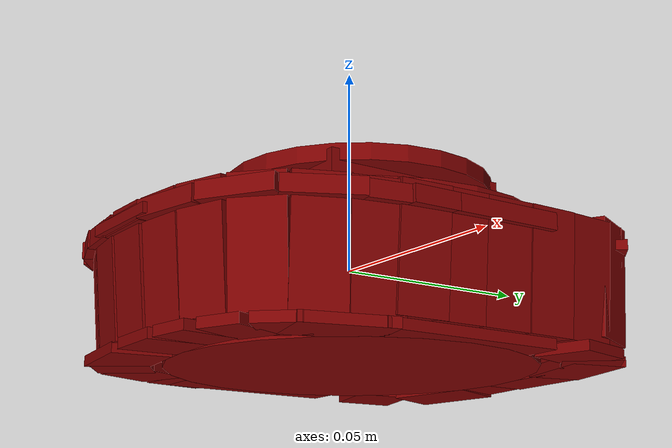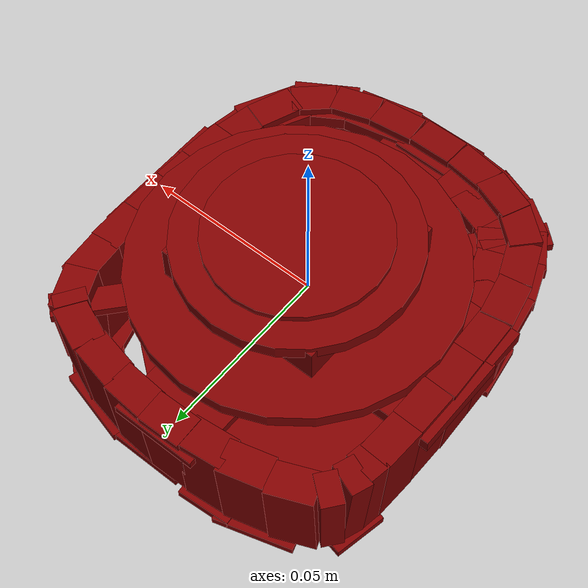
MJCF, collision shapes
<?xml version='1.0' encoding='UTF-8'?>
<mujoco model="model">
  <option timestep="0.002" gravity="0.0 0.0 -9.81"/>
  <compiler angle="radian"/>
  <asset>
    <mesh file="visuals/lid.obj" name="lid_vis"/>
    <texture file="visuals/T_BC001.png" name="lid_material" type="2d"/>
    <material name="lid_material" rgba="1 1 1 1.0" texture="lid_material" shininess="0.4472135901451111" specular="0.3103448502657381"/>
  </asset>
  <default>
    <default class="visual">
      <geom conaffinity="0" contype="0" group="1" type="mesh"/>
    </default>
    <default class="collision">
      <geom group="0" rgba="0.5 0 0 0.5" solref="0.004 1" solimp="0.998 0.998 0.001"/>
    </default>
    <default class="spawn">
      <geom group="0" rgba="1 1 1 0.5" contype="0" conaffinity="0"/>
      <site group="0" rgba="1 1 1 0.5"/>
    </default>
    <default class="region">
      <geom group="1" conaffinity="0" contype="0" rgba="0 1 0 0" mass="0"/>
    </default>
  </default>
  <worldbody>
    <body>
      <body name="object">
        <geom mesh="lid_vis" type="mesh" solimp="0.998 0.998 0.001" solref="0.001 1" friction="0.95 0.3 0.1" class="visual" material="lid_material"/>
        <geom type="box" pos="-0.0008717566379345953 -0.052492860704660416 -0.006645962595939636" size="0.006184625905007124 0.0043828533962368965 0.014015174470841885" quat="0.9989956021308899 0.04480874165892601 0.0 0.0" class="collision"/>
        <geom type="box" pos="0.002456957008689642 0.0010343752801418304 0.01422727108001709" size="0.02343365177512169 0.02343365177512169 0.005553874187171459" quat="1.0 0.0 0.0 0.0" class="collision"/>
        <geom type="box" pos="0.0003340260009281337 -0.0010789477964863181 0.0032468149438500404" size="0.011943714693188667 0.059019118547439575 0.001211795606650412" quat="1.0 0.0 0.0 0.0" class="collision"/>
        <geom type="box" pos="-0.00023086309374775738 0.005385901778936386 0.003638729453086853" size="0.051560331135988235 0.013726476579904556 0.001966416137292981" quat="1.0 0.0 0.0 0.0" class="collision"/>
        <geom type="cylinder" name="handle_main" pos="0.002456957008689642 0.0010343752801418304 0.01907290518283844" size="0.031915199011564255 0.001953316852450371" quat="1.0 0.0 0.0 0.0" class="collision"/>
        <geom type="cylinder" pos="0.002456957008689642 0.0010343752801418304 0.0209781676530838" size="0.02421092987060547 0.0017286426154896617" quat="1.0 0.0 0.0 0.0" class="collision"/>
        <geom type="box" pos="0.011734290979802608 -0.0514787994325161 -0.006628669332712889" size="0.006184625905007124 0.0043828533962368965 0.014015174470841885" quat="0.9971495866775513 0.04472595453262329 0.0027227734681218863 0.06070328503847122" class="collision"/>
        <geom type="box" pos="0.0235845148563385 -0.04909174144268036 -0.006677878089249134" size="0.006184625905007124 0.0043828533962368965 0.014015174470841885" quat="0.9860464334487915 0.044227924197912216 0.0071912603452801704 0.16032668948173523" class="collision"/>
        <geom type="box" pos="0.03324100002646446 -0.043575312942266464 -0.006731398869305849" size="0.006184625905007124 0.004382853861898184 0.014015174470841885" quat="0.9286019206047058 0.04268524423241615 0.013630624860525131 0.36836209893226624" class="collision"/>
        <geom type="box" pos="0.039114102721214294 -0.034822944551706314 -0.006672819145023823" size="0.006184625905007124 0.0043828533962368965 0.01401517353951931" quat="0.8257667422294617 0.03177965059876442 0.022882843390107155 0.5626506209373474" class="collision"/>
        <geom type="box" pos="0.042382292449474335 -0.024115825071930885 -0.006836813408881426" size="0.006184625905007124 0.0043828533962368965 0.01401517353951931" quat="0.7648034691810608 0.03326548635959625 0.013193421065807343 0.6432690024375916" class="collision"/>
        <geom type="box" pos="-0.012881215661764145 -0.0519317202270031 -0.0070566944777965546" size="0.006184625905007124 0.0043828533962368965 0.014015174470841885" quat="0.9962430596351624 0.04468527436256409 0.0033240090124309063 -0.07410763204097748" class="collision"/>
        <geom type="box" pos="-0.024223534390330315 -0.049065832048654556 -0.006713926792144775" size="0.006184625439345837 0.0043828533962368965 0.014015174470841885" quat="0.9820907711982727 0.044050510972738266 0.008208351209759712 -0.18300248682498932" class="collision"/>
        <geom type="box" pos="-0.033317964524030685 -0.04361240193247795 -0.006511772517114878" size="0.006184625905007124 0.0043828533962368965 0.014015174470841885" quat="0.3471202254295349 0.015569651499390602 -0.042016755789518356 0.9367495775222778" class="collision"/>
        <geom type="box" pos="-0.03898944705724716 -0.03537497669458389 -0.0066362121142446995" size="0.006184625905007124 0.0043828533962368965 0.01401517353951931" quat="0.8322421312332153 0.023445041850209236 -0.015598159283399582 -0.5536967515945435" class="collision"/>
        <geom type="box" pos="-0.04268550127744675 -0.024001674726605415 -0.00658066850155592" size="0.006184625439345837 0.0043828533962368965 0.01401517353951931" quat="0.7774970531463623 0.02478649839758873 -0.013364195823669434 -0.6282557845115662" class="collision"/>
        <geom type="box" pos="-0.04401722922921181 -0.012152932584285736 -0.006882311310619116" size="0.006184625905007124 0.0043828533962368965 0.01401517353951931" quat="0.7214928269386292 0.025829320773482323 -0.011216862127184868 -0.6918490529060364" class="collision"/>
        <geom type="box" pos="-0.04454176127910614 0.00019346736371517181 -0.006640623323619366" size="0.006184625905007124 0.0043828533962368965 0.01401517353951931" quat="0.7214928269386292 0.025829320773482323 -0.011216862127184868 -0.6918490529060364" class="collision"/>
        <geom type="box" pos="-0.04452917352318764 0.012410612776875496 -0.00637626089155674" size="0.006184625905007124 0.0043828533962368965 0.01401517353951931" quat="0.7052590250968933 0.020766956731677055 -0.012673071585595608 -0.7085322141647339" class="collision"/>
        <geom type="box" pos="-0.04435776174068451 0.02455754578113556 -0.006230311468243599" size="0.0061846268363296986 0.0043828533962368965 0.01401517353951931" quat="0.6935446858406067 0.02097199484705925 -0.012330807745456696 -0.7200027108192444" class="collision"/>
        <geom type="box" pos="-0.04367474094033241 0.032569047063589096 -0.006107056979089975" size="0.0029371578712016344 0.0043828533962368965 0.014015174470841885" quat="0.649431049823761 0.0216691717505455 -0.011059848591685295 -0.7600312232971191" class="collision"/>
        <geom type="box" pos="-0.042837388813495636 0.03749676048755646 -0.006011485122144222" size="0.0029371576383709908 0.0043828533962368965 0.014015174470841885" quat="0.5767607092857361 0.029059505090117455 -0.018179234117269516 -0.816193699836731" class="collision"/>
        <geom type="box" pos="-0.04109020158648491 0.04261880740523338 -0.00595355499535799" size="0.0029371578712016344 0.0043828533962368965 0.014015174470841885" quat="0.43282848596572876 0.004266930744051933 -0.04385792091488838 -0.9003986716270447" class="collision"/>
        <geom type="box" pos="-0.012069160118699074 0.05129004269838333 -0.006809476763010025" size="0.006184625905007124 0.0043828533962368965 0.014015174470841885" quat="0.9984058737754822 -0.019158117473125458 0.0010185614228248596 0.05308130383491516" class="collision"/>
        <geom type="box" pos="-0.0009172072168439627 0.05209355428814888 -0.006674429401755333" size="0.006184625905007124 0.0043828533962368965 0.01401517353951931" quat="0.9993401765823364 -0.03457516431808472 -0.00228826142847538 0.010885406285524368" class="collision"/>
        <geom type="box" pos="0.01052478700876236 0.05165069177746773 -0.006592973601073027" size="0.006184625439345837 0.0043828533962368965 0.01401517353951931" quat="0.03570965304970741 -0.0038974559865891933 0.03443090617656708 0.9987612962722778" class="collision"/>
        <geom type="box" pos="0.022101284936070442 0.049747105687856674 -0.006399397738277912" size="0.006184625439345837 0.0043828533962368965 0.01401517353951931" quat="0.10031493753194809 -0.006119037512689829 0.034106235951185226 0.9943521618843079" class="collision"/>
        <geom type="box" pos="0.03363478183746338 0.046675652265548706 -0.00612521031871438" size="0.0061846268363296986 0.0043828533962368965 0.01401517353951931" quat="0.9805381298065186 -0.0333809033036232 -0.009294770658016205 -0.1932467520236969" class="collision"/>
        <geom type="box" pos="0.03966498374938965 0.043384160846471786 -0.005697209853678942" size="0.002036633435636759 0.004382852930575609 0.014015172608196735" quat="0.299102246761322 0.0089473407715559 0.02256159298121929 0.9539123177528381" class="collision"/>
        <geom type="box" pos="0.0414910688996315 0.04033279791474342 -0.005644205491989851" size="0.006184625905007124 0.004382852930575609 0.01401517353951931" quat="0.8329264521598816 -0.027320776134729385 -0.02131320908665657 -0.5522977709770203" class="collision"/>
        <geom type="box" pos="0.04398925602436066 0.031380947679281235 -0.0066857426427304745" size="0.006184625905007124 0.0043828533962368965 0.01401517353951931" quat="0.736046314239502 -0.026182008907198906 0.02404599077999592 -0.6759971380233765" class="collision"/>
        <geom type="box" pos="0.04484298452734947 0.019418617710471153 -0.006673993077129126" size="0.006184625905007124 0.0043828533962368965 0.01401517353951931" quat="0.7112253904342651 -0.027030957862734795 0.023087553679943085 -0.7020646333694458" class="collision"/>
        <geom type="box" pos="0.044669073075056076 0.007043011486530304 -0.0066038817167282104" size="0.006184625439345837 0.0043828533962368965 0.01401517353951931" quat="0.7026296854019165 -0.027309896424412727 0.02275690622627735 -0.7106671929359436" class="collision"/>
        <geom type="box" pos="0.044388990849256516 -0.004954085685312748 -0.006502699572592974" size="0.0061846268363296986 0.0043828533962368965 0.01401517353951931" quat="0.6906829476356506 -0.02768552489578724 0.022298408672213554 -0.7222834229469299" class="collision"/>
        <geom type="box" pos="0.04408798739314079 -0.014369580894708633 -0.006416069809347391" size="0.006184625905007124 0.0043828533962368965 0.01401517353951931" quat="0.6823010444641113 -0.027941033244132996 0.02197740413248539 -0.7302065491676331" class="collision"/>
        <geom type="box" pos="0.002338903024792671 -0.0010427134111523628 0.0032468149438500404" size="0.0034860873129218817 0.06424133479595184 0.0012117954902350903" quat="0.9365500807762146 0.0 -0.0 -0.35053378343582153" class="collision"/>
        <geom type="box" pos="3.800629929173738e-05 -0.01342749036848545 0.003638729453086853" size="0.05133942514657974 0.005857704672962427 0.001966416137292981" quat="1.0 0.0 0.0 0.0" class="collision"/>
        <geom type="box" pos="-0.04088785499334335 -0.022154169157147408 0.003638729453086853" size="0.0058576930314302444 0.008890579454600811 0.001966416137292981" quat="0.6443255543708801 0.0 0.0 0.7647513151168823" class="collision"/>
        <geom type="box" pos="-0.038652677088975906 -0.031313877552747726 0.003638729453086853" size="0.005857693497091532 0.008890579454600811 0.001966416137292981" quat="0.5666534900665283 0.0 0.0 0.8239561915397644" class="collision"/>
        <geom type="box" pos="-0.03517017513513565 -0.03887155279517174 0.003638729453086853" size="0.0058576930314302444 0.008890579454600811 0.001966416137292981" quat="0.4717804491519928 0.0 0.0 0.8817160725593567" class="collision"/>
        <geom type="box" pos="-0.030076036229729652 -0.04440954700112343 0.003638729453086853" size="0.0058576930314302444 0.008890579454600811 0.001966416137292981" quat="0.3003154695034027 0.0 0.0 0.9538399577140808" class="collision"/>
        <geom type="box" pos="-0.022273365408182144 -0.047936782240867615 0.003638729453086853" size="0.0058576930314302444 0.008890579454600811 0.001966416137292981" quat="0.16812922060489655 0.0 0.0 0.9857649803161621" class="collision"/>
        <geom type="box" pos="-0.01424612570554018 -0.04957367479801178 0.003638729453086853" size="0.0058576930314302444 0.008890579454600811 0.001966416137292981" quat="0.05959370732307434 0.0 0.0 0.9982227087020874" class="collision"/>
        <geom type="box" pos="-0.0008158811833709478 -0.052858468145132065 0.003638729453086853" size="0.005857693497091532 0.008890580385923386 0.001966416137292981" quat="0.7135815620422363 0.0 0.0 0.70057213306427" class="collision"/>
        <geom type="box" pos="0.0162061657756567 -0.05224990472197533 0.003638729453086853" size="0.0058576930314302444 0.008890579454600811 0.001966416137292981" quat="0.6283853054046631 0.0 0.0 0.7779022455215454" class="collision"/>
        <geom type="box" pos="0.03189000114798546 -0.04656827449798584 0.003638729453086853" size="0.0058576930314302444 0.008890579454600811 0.001966416137292981" quat="0.48544982075691223 0.0 0.0 0.8742645382881165" class="collision"/>
        <geom type="box" pos="0.04067646712064743 -0.03487849235534668 0.003638729453086853" size="0.0058576930314302444 0.008890579454600811 0.001966416137292981" quat="0.22923503816127777 0.0 0.0 0.9733710885047913" class="collision"/>
        <geom type="box" pos="0.0440131351351738 -0.022359956055879593 0.003638729453086853" size="0.00585769210010767 0.005883513484150171 0.001966416137292981" quat="0.07962843030691147 0.0 0.0 0.9968246221542358" class="collision"/>
        <geom type="box" pos="-0.022556718438863754 0.04981045424938202 -0.00673444801941514" size="0.0061846268363296986 0.0043828533962368965 0.01401517353951931" quat="0.9912165403366089 -0.027042414993047714 0.0014365817187353969 0.12944644689559937" class="collision"/>
        <geom type="box" pos="-0.03409227356314659 0.04662036895751953 -0.0066137961111962795" size="0.006184625905007124 0.0043828533962368965 0.01401517353951931" quat="0.9802337288856506 -0.02688402682542801 0.0032565367873758078 0.1959807127714157" class="collision"/>
        <geom type="cylinder" pos="0.002456957008689642 0.0010343752801418304 0.007757728919386864" size="0.04407339543104172 0.001953316852450371" quat="1.0 0.0 0.0 0.0" class="collision"/>
        <geom type="cylinder" pos="-0.0005833043251186609 0.0010343752801418304 -0.021592436358332634" size="0.04407339543104172 0.001953316852450371" quat="1.0 0.0 0.0 0.0" class="collision"/>
        <geom type="box" pos="0.04256714880466461 -0.0010789477964863181 -0.022330820560455322" size="0.004829592537134886 0.022318240255117416 0.0012117944424971938" quat="1.0 0.0 0.0 0.0" class="collision"/>
        <geom type="box" pos="-0.04223361238837242 -0.0010789477964863181 -0.022330820560455322" size="0.004829592537134886 0.022318240255117416 0.0012117947917431593" quat="1.0 0.0 0.0 0.0" class="collision"/>
        <geom type="box" pos="0.008481396362185478 0.049660589545965195 -0.022330820560455322" size="0.010808412916958332 0.005857483949512243 0.0012117958394810557" quat="1.0 0.0 0.0 0.0" class="collision"/>
        <geom type="box" pos="0.027095852419734 0.046762604266405106 -0.022330820560455322" size="0.00687675504013896 0.010808411054313183 0.0012117954902350903" quat="0.7892836332321167 0.0 0.0 0.6140287518501282" class="collision"/>
        <geom type="box" pos="0.04232244938611984 0.032799310982227325 -0.022330820560455322" size="0.00687675504013896 0.007508411072194576 0.0012117954902350903" quat="0.9907291531562805 0.0 0.0 0.13585209846496582" class="collision"/>
        <geom type="box" pos="0.037359580397605896 0.04154202342033386 -0.022330820560455322" size="0.00687675504013896 0.005291738081723452 0.0012117954902350903" quat="0.9094141125679016 0.0 0.0 0.4158918261528015" class="collision"/>
        <geom type="box" pos="-0.019505387172102928 -0.04743071272969246 -0.022330820560455322" size="0.00687675504013896 0.010808411054313183 0.0012117954902350903" quat="0.6571140885353088 0.0 -0.0 -0.7537911534309387" class="collision"/>
        <geom type="box" pos="-0.036193039268255234 -0.035251013934612274 -0.022330820560455322" size="0.00687675504013896 0.007508411072194576 0.0012117954902350903" quat="0.19092315435409546 0.0 -0.0 -0.9816049933433533" class="collision"/>
        <geom type="box" pos="-0.030286910012364388 -0.04338628798723221 -0.022330820560455322" size="0.00687675504013896 0.005291738081723452 0.0012117954902350903" quat="0.4659891724586487 0.0 -0.0 -0.8847904205322266" class="collision"/>
        <geom type="box" pos="-0.04049486666917801 -0.02098018303513527 -0.022330820560455322" size="0.00687675504013896 0.007508411072194576 0.0012117954902350903" quat="0.07467305660247803 0.0 -0.0 -0.9972080588340759" class="collision"/>
        <geom type="box" pos="-0.024283505976200104 0.04754071682691574 -0.022626208141446114" size="0.0068767559714615345 0.010808411054313183 0.0012117953738197684" quat="0.5954622626304626 -0.01658359356224537 0.0016697628889232874 0.8032103776931763" class="collision"/>
        <geom type="box" pos="-0.011897052638232708 0.049849338829517365 -0.02203543297946453" size="0.00687675504013896 0.007508411072194576 0.0012117953738197684" quat="0.6777305603027344 -0.011093123815953732 -0.012439706362783909 0.7351214289665222" class="collision"/>
        <geom type="box" pos="-0.04030817747116089 0.036001503467559814 -0.022361895069479942" size="0.007274079602211714 0.00721054058521986 0.001258575590327382" quat="0.7752940058708191 -0.016557909548282623 -0.0019076784374192357 0.631380558013916" class="collision"/>
        <geom type="box" pos="0.0385720394551754 -0.02905440144240856 -0.022330820560455322" size="0.00687675504013896 0.010808411054313183 0.0012117954902350903" quat="0.991763174533844 0.0 -0.0 -0.128085196018219" class="collision"/>
        <geom type="box" pos="0.002717188559472561 -0.049777641892433167 -0.022330820560455322" size="0.00687675504013896 0.007508411072194576 0.0012117954902350903" quat="0.6981680989265442 0.0 -0.0 -0.7159338593482971" class="collision"/>
        <geom type="box" pos="0.034203559160232544 -0.039520371705293655 -0.022330820560455322" size="0.00687675504013896 0.005291738081723452 0.0012117954902350903" quat="0.935660719871521 0.0 -0.0 -0.35290083289146423" class="collision"/>
        <geom type="box" pos="0.02693988010287285 -0.04511592164635658 -0.022330820560455322" size="0.00687675504013896 0.005291738547384739 0.0012117954902350903" quat="0.8348686695098877 0.0 -0.0 -0.5504491925239563" class="collision"/>
        <geom type="box" pos="0.01623588614165783 -0.04901992529630661 -0.022330820560455322" size="0.00687675504013896 0.005291738081723452 0.0012117954902350903" quat="0.758155107498169 0.0 -0.0 -0.6520742774009705" class="collision"/>
        <geom class="region" name="reg_main" type="box" pos="-0.000113682821393013 0.0 0.0" size="0.05268168246746063 0.060254497289657594 0.02426900511980057"/>
      </body>
    </body>
  </worldbody>
  <actuator/>
</mujoco>
